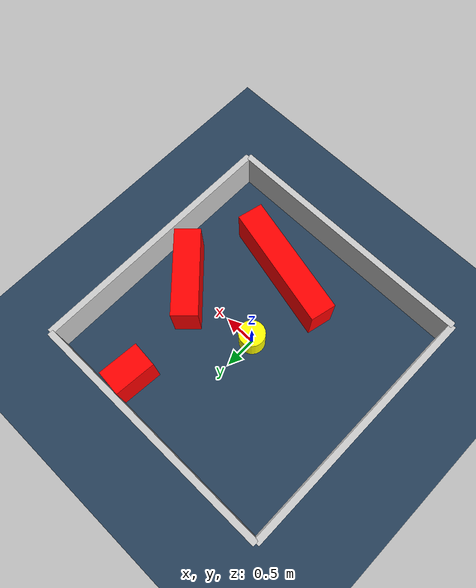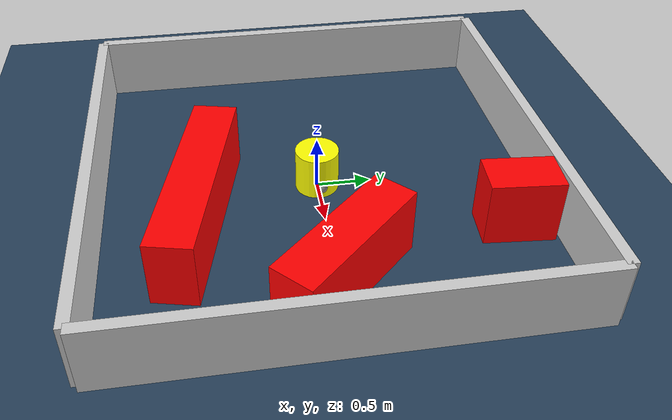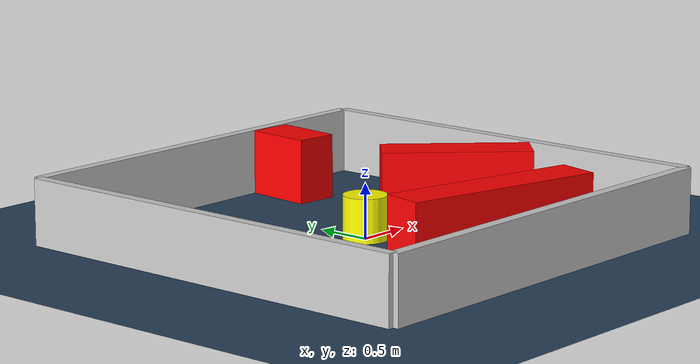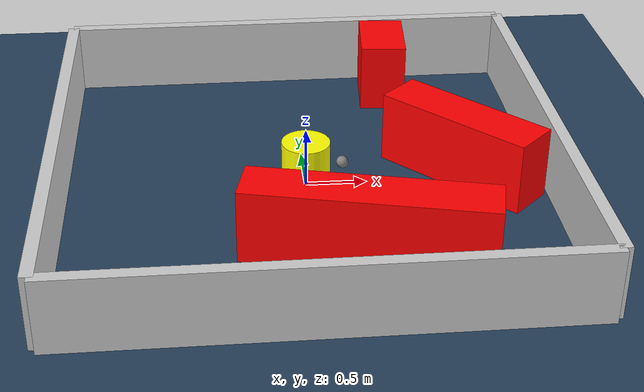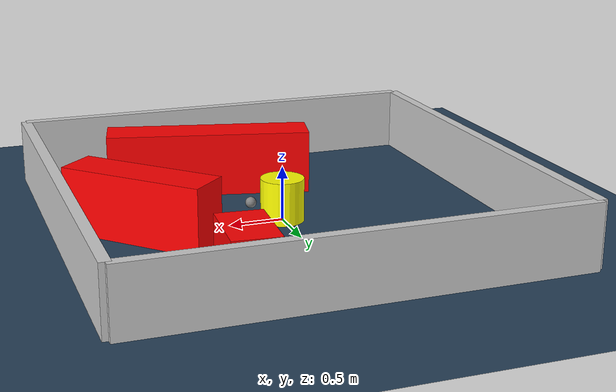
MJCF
<?xml version="1.0" ?>
<mujoco model="generated_environment">
  <option timestep="0.01" integrator="RK4" cone="elliptic"/>
  <default>
    <geom density="1"/>
  </default>
  <asset>
    <texture builtin="gradient" height="3072" rgb1="0.3 0.5 0.7" rgb2="0 0 0" type="skybox" width="512"/>
    <texture builtin="checker" height="300" mark="edge" markrgb="0.8 0.8 0.8" name="groundplane" rgb1="0.2 0.3 0.4" rgb2="0.1 0.2 0.3" type="2d" width="300"/>
    <material name="groundplane" reflectance="0.2" texrepeat="5 5" texture="groundplane" texuniform="true"/>
    <material name="robot" rgba="0.0 1.0 0.0 1"/>
  </asset>
  <worldbody>
    <light dir="0 0 -1" directional="true" pos="0 0 1.5"/>
    <geom condim="4" friction="1.0 0.005 0.001" material="groundplane" name="floor" size="0 0 0.05" type="plane"/>
    <body name="walls">
      <geom name="wall_1" condim="4" pos="-2.0 0.0 0.3" rgba="0.800000011920929 0.800000011920929 0.800000011920929 1.0" size="0.05 2.0 0.3" type="box"/>
      <geom name="wall_2" condim="4" pos="2.0 0.0 0.3" rgba="0.800000011920929 0.800000011920929 0.800000011920929 1.0" size="0.05 2.0 0.3" type="box"/>
      <geom name="wall_3" condim="4" pos="0.0 -2.0 0.3" rgba="0.800000011920929 0.800000011920929 0.800000011920929 1.0" size="2.0 0.05 0.3" type="box"/>
      <geom name="wall_4" condim="4" pos="0.0 2.0 0.3" rgba="0.800000011920929 0.800000011920929 0.800000011920929 1.0" size="2.0 0.05 0.3" type="box"/>
    </body>
    <body name="robot">
      <joint name="joint_x" type="slide" pos="0 0 0" axis="1 0 0"/>
      <joint name="joint_y" type="slide" pos="0 0 0" axis="0 1 0"/>
      <geom name="robot" type="sphere" pos="0.3 0.0 0.2" size="0.05" mass="5." friction="1.0 0.005 0.0001" condim="4" rgba="0.5 0.5 0.5 1.0"/>
      <site name="sensor_ball"/>
    </body>
    <body name="obstacle_movable_1">
      <geom name="obstacle_movable_1" condim="4" pos="0.0 0.0 0.2" euler="0 0 0.0" friction="1.0 0.005 0.001" rgba="1.0 1.0 0.0 1.0" size="0.2 0.2 0.0" type="cylinder" mass="0.1"/>
      <joint type="free"/>
    </body>
    <body name="obstacle_2_static">
      <geom name="obstacle_2_static" condim="4" pos="0.8434663404033971 1.6118801126005546 0.3" euler="0 0 85.24204141461422" friction="1.0 0.005 0.001" rgba="1 0 0 1" size="0.31805016723420665 0.2 0.3" type="box"/>
    </body>
    <body name="obstacle_3_static">
      <geom name="obstacle_3_static" condim="4" pos="0.38117477660281374 -1.100952441766104 0.3" euler="0 0 346.7446937979312" friction="1.0 0.005 0.001" rgba="1 0 0 1" size="0.9692092820632678 0.2 0.3" type="box"/>
    </body>
    <body name="obstacle_4_static">
      <geom name="obstacle_4_static" condim="4" pos="1.30485172971468 0.032572377213536674 0.3" euler="0 0 313.8067419048879" friction="1.0 0.005 0.001" rgba="1 0 0 1" size="0.6861961057565349 0.2 0.3" type="box"/>
    </body>
  </worldbody>
  <actuator>
    <motor name="actuator_x" joint="joint_x" gear="1" ctrlrange="-1 1"/>
    <motor name="actuator_y" joint="joint_y" gear="1" ctrlrange="-1 1"/>
  </actuator>
</mujoco>
